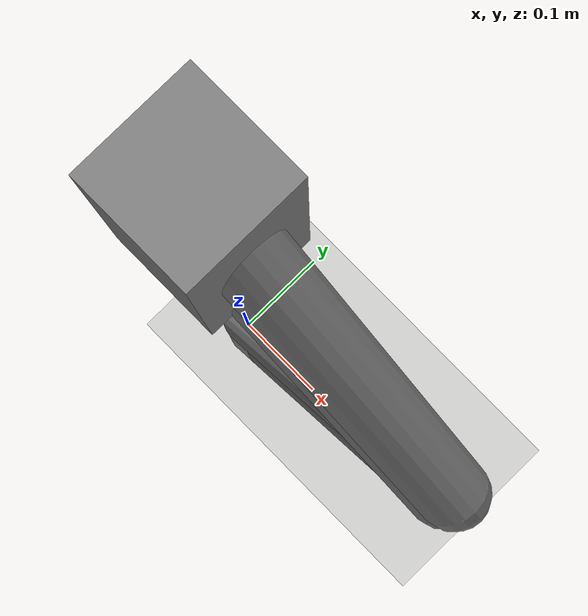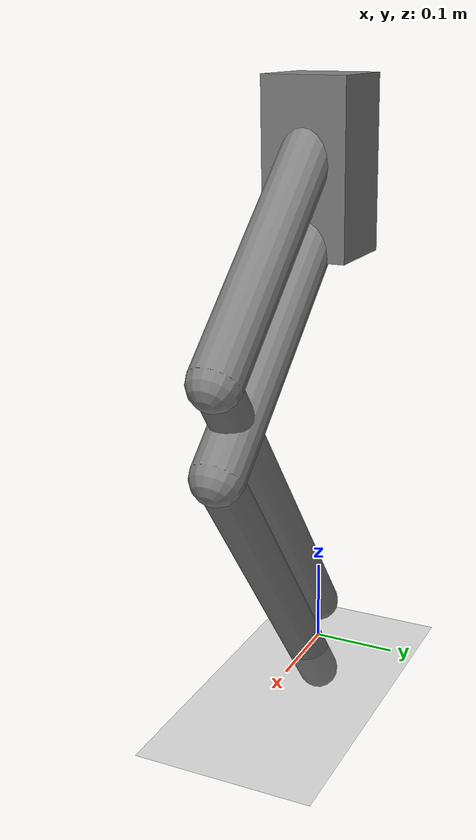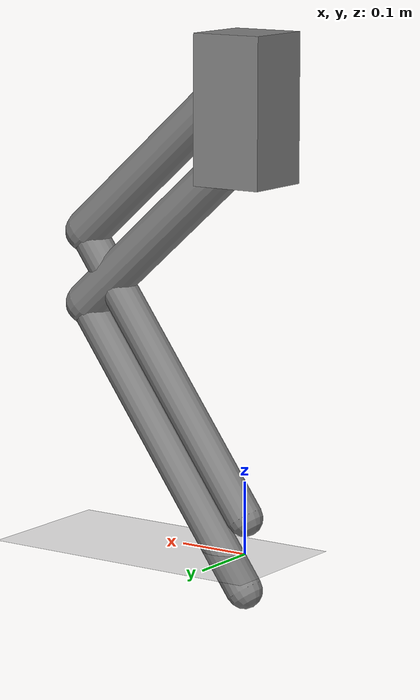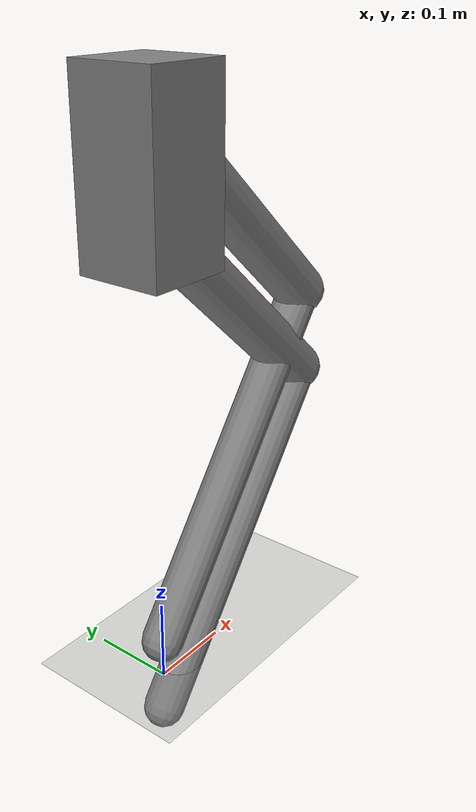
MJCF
<mujoco model="FiveBar2D">

  <compiler inertiafromgeom="true" angle="radian" />
  <option timestep="0.001" integrator="implicit" />

  <default>
    <joint damping="0.1" />
    <geom contype="1" conaffinity="1" friction="2 0.005 0.0001" />
  </default>

  <worldbody>

    <geom name="floor" type="plane" size="5 5 0.25" />

    <body name="root" pos="0 0 0.6">
      <joint name="slide_x" type="slide" axis="1 0 0" />
      <joint name="slide_z" type="slide" axis="0 0 1" />

      <body name="base">

        <geom name="torso" type="box" size="0.05 0.05 0.1" mass="2.0" />

        <body name="link1_left" pos="0 0 0.05" euler="0 0.7297276562269662 0">
          <joint name="hip_left" type="hinge" axis="0 -1 0" range="-3.14 3.14" />

          <geom name="thigh_left" type="capsule" fromto="0 0 0 0.35 0 0" size="0.03" mass="1.0" />

          <body name="link2_left" pos="0.35 0 0" euler="0 1.459455312453933 0">

            <joint name="knee_left" type="hinge" axis="0 -1 0" range="-3.14 3.14" />

            <geom name="shank_left" type="capsule" fromto="0 0 0 0.45 0 0" size="0.025" mass="0.5" />

            <site name="left_tip" pos="0.45 0 0" />
          </body>
        </body>

        <body name="link1_right" pos="0 0 -0.05" euler="0 0.7297276562269662 0">
          <joint name="hip_right" type="hinge" axis="0 -1 0" range="-3.14 3.14" />

          <geom name="thigh_right" type="capsule" fromto="0 0 0 0.35 0 0" size="0.03" mass="1.0" />

          <body name="link2_right" pos="0.35 0 0" euler="0 1.459455312453933 0">

            <joint name="knee_right" type="hinge" axis="0 -1 0" range="-3.14 3.14" />

            <geom name="shank_right" type="capsule" fromto="0 0 0 0.45 0 0" size="0.025" mass="0.5" />

            <site name="right_tip" pos="0.45 0 0" />
          </body>
        </body>

      </body>
    </body>

  </worldbody>

  <equality>
    <connect site1="left_tip" site2="right_tip" solref="0.002 1" solimp="0.9 0.9 0.001" />
  </equality>

  <actuator>
    <motor name="torque_left" joint="hip_left" ctrlrange="-60 60" />
    <motor name="torque_right" joint="hip_right" ctrlrange="-60 60" />
  </actuator>

</mujoco>
